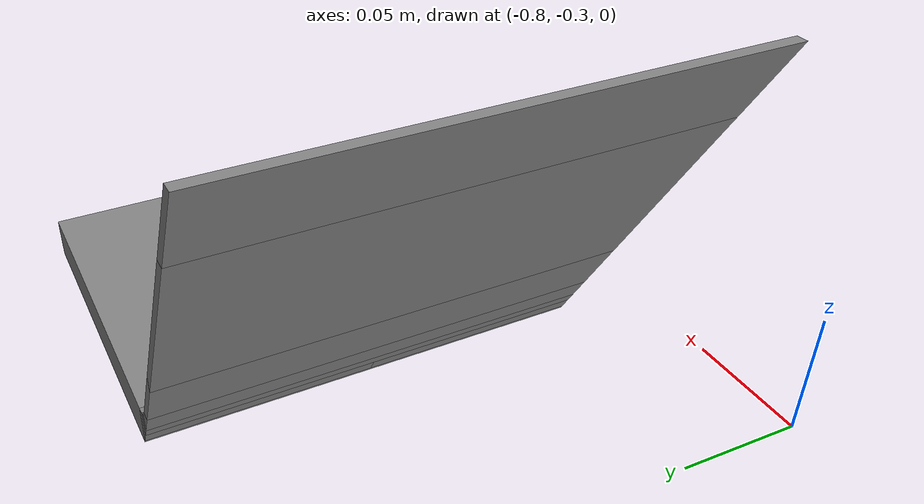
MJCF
<mujoco>
  <asset>
    <mesh name="120degree_model_col_0" file="/home/hzk/AFPController/src/afp_mjc/env/120degree_model/meshes/parts/120degree_model_part_0.STL"/>
    <mesh name="120degree_model_col_1" file="/home/hzk/AFPController/src/afp_mjc/env/120degree_model/meshes/parts/120degree_model_part_1.STL"/>
    <mesh name="120degree_model_col_2" file="/home/hzk/AFPController/src/afp_mjc/env/120degree_model/meshes/parts/120degree_model_part_2.STL"/>
    <mesh name="120degree_model_col_3" file="/home/hzk/AFPController/src/afp_mjc/env/120degree_model/meshes/parts/120degree_model_part_3.STL"/>
    <mesh name="120degree_model_col_4" file="/home/hzk/AFPController/src/afp_mjc/env/120degree_model/meshes/parts/120degree_model_part_4.STL"/>
    <mesh name="120degree_model_col_5" file="/home/hzk/AFPController/src/afp_mjc/env/120degree_model/meshes/parts/120degree_model_part_5.STL"/>
    <mesh name="120degree_model_col_6" file="/home/hzk/AFPController/src/afp_mjc/env/120degree_model/meshes/parts/120degree_model_part_6.STL"/>
    <mesh name="120degree_model_col_7" file="/home/hzk/AFPController/src/afp_mjc/env/120degree_model/meshes/parts/120degree_model_part_7.STL"/>
  </asset>

  <worldbody>
    <body name="120degree_model" pos="-0.626058575 -0.18203986 -0.02328407" quat="-0.71249575 -0.00123646 0.0043159 0.70166206">
        <body name="col_0">
            <geom type="mesh" mesh="120degree_model_col_0" group="2"/>
        </body>
        <body name="col_1">
            <geom type="mesh" mesh="120degree_model_col_1" group="2"/>
        </body>
        <body name="col_2">
            <geom type="mesh" mesh="120degree_model_col_2" group="2"/>
        </body>
        <body name="col_3">
            <geom type="mesh" mesh="120degree_model_col_3" group="2"/>
        </body>
        <body name="col_4">
            <geom type="mesh" mesh="120degree_model_col_4" group="2"/>
        </body>
        <body name="col_5">
            <geom type="mesh" mesh="120degree_model_col_5" group="2"/>
        </body>
        <body name="col_6">
            <geom type="mesh" mesh="120degree_model_col_6" group="2"/>
        </body>
        <body name="col_7">
            <geom type="mesh" mesh="120degree_model_col_7" group="2"/>
        </body>
    </body>
  </worldbody>
</mujoco>
